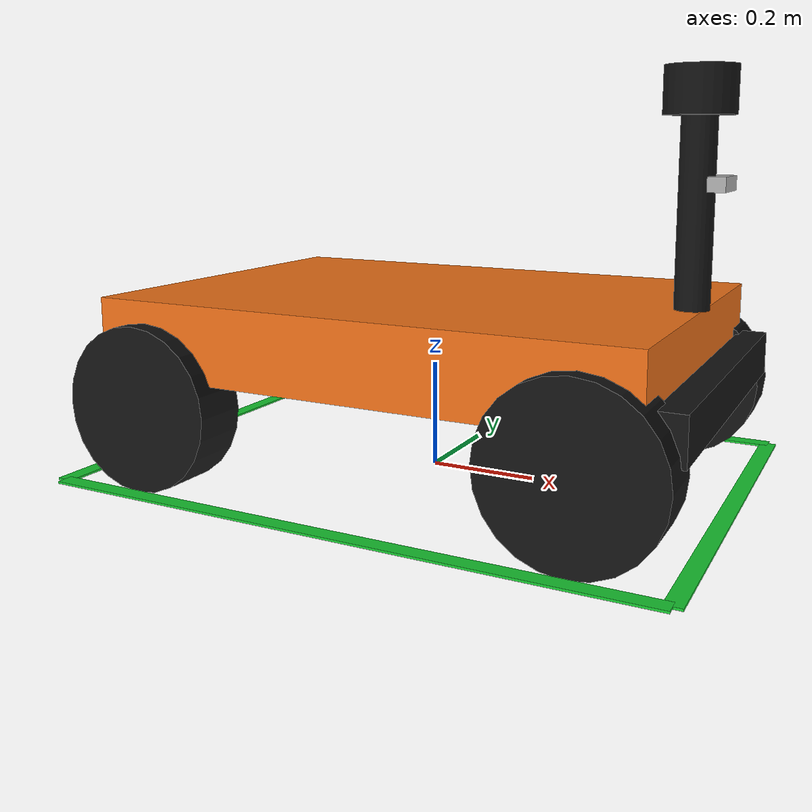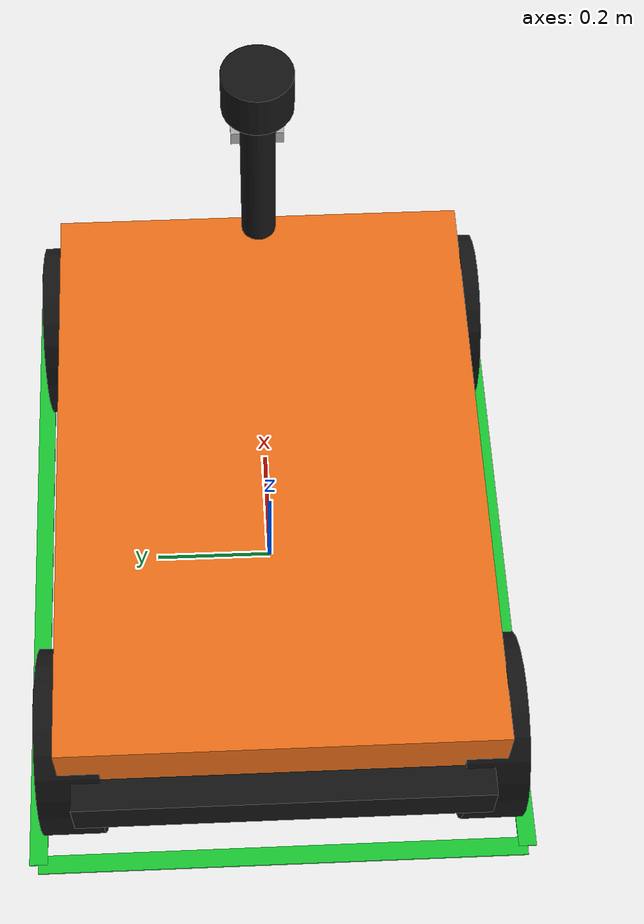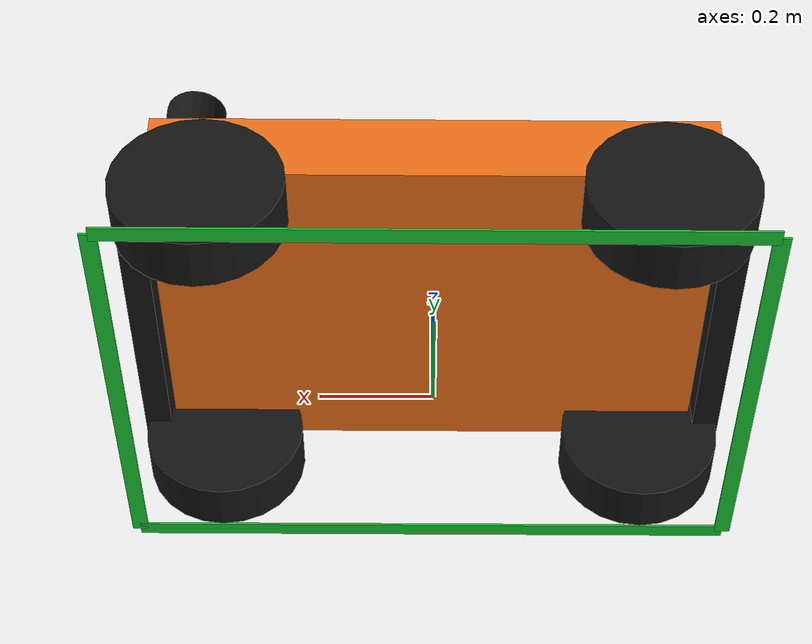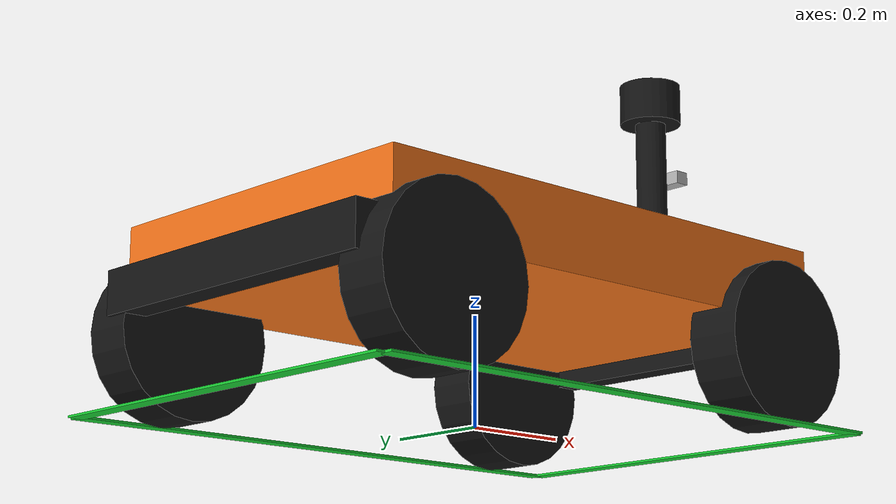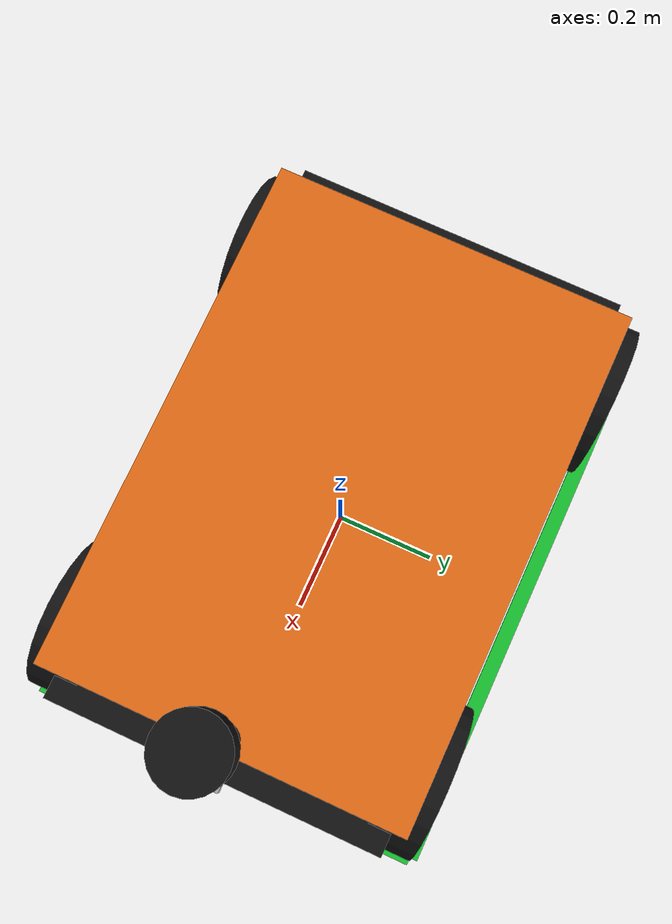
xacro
<?xml version="1.0"?>
<robot name="rover_mega" xmlns:xacro="http://www.ros.org/wiki/xacro">
  <xacro:property name="L" value="1.12"/>          <!-- footprint length, m -->
  <xacro:property name="Wd" value="0.81"/>         <!-- footprint width, m -->
  <xacro:property name="wheel_r" value="0.15"/>
  <xacro:property name="wheel_w" value="0.10"/>
  <xacro:property name="wx" value="0.40"/>         <!-- wheel x offset from centre (measure) -->
  <xacro:property name="wy" value="0.335"/>        <!-- wheel y offset from centre -->
  <xacro:property name="line" value="0.03"/>       <!-- footprint outline line width -->

  <material name="orange"><color rgba="0.95 0.45 0.10 1"/></material>
  <material name="dark"><color rgba="0.08 0.08 0.08 1"/></material>
  <material name="steel"><color rgba="0.7 0.7 0.7 1"/></material>
  <material name="outline"><color rgba="0.1 0.8 0.2 0.9"/></material>

  <link name="base_footprint"/>
  <joint name="footprint_joint" type="fixed"><parent link="base_footprint"/><child link="base_link"/><origin xyz="0 0 ${wheel_r}" rpy="0 0 0"/></joint>

  <link name="base_link">
    <visual><origin xyz="0 0 0.12"/><geometry><box size="1.00 0.70 0.14"/></geometry><material name="orange"/></visual>
    <visual><origin xyz="0.53 0 0.06"/><geometry><box size="0.05 0.66 0.08"/></geometry><material name="dark"/></visual>
    <visual><origin xyz="-0.53 0 0.06"/><geometry><box size="0.05 0.66 0.08"/></geometry><material name="dark"/></visual>
    <collision><origin xyz="0 0 0.10"/><geometry><box size="${L} ${Wd} 0.30"/></geometry></collision>
    <inertial><mass value="60"/><origin xyz="0 0 0.10"/><inertia ixx="3.41" iyy="6.5" izz="9.0" ixy="0" ixz="0" iyz="0"/></inertial>
  </link>

  <xacro:macro name="wheel" params="name x y">
    <link name="${name}_wheel">
      <visual><origin rpy="${pi/2} 0 0"/><geometry><cylinder radius="${wheel_r}" length="${wheel_w}"/></geometry><material name="dark"/></visual>
      <collision><origin rpy="${pi/2} 0 0"/><geometry><cylinder radius="${wheel_r}" length="${wheel_w}"/></geometry></collision>
      <inertial><mass value="3"/><inertia ixx="0.0194" iyy="0.0338" izz="0.0194" ixy="0" ixz="0" iyz="0"/></inertial>
    </link>
    <joint name="${name}_wheel_joint" type="continuous">
      <parent link="base_link"/><child link="${name}_wheel"/><origin xyz="${x} ${y} 0"/><axis xyz="0 1 0"/>
    </joint>
  </xacro:macro>
  <xacro:wheel name="front_left"  x="${wx}"  y="${wy}"/>
  <xacro:wheel name="front_right" x="${wx}"  y="${-wy}"/>
  <xacro:wheel name="rear_left"   x="${-wx}" y="${wy}"/>
  <xacro:wheel name="rear_right"  x="${-wx}" y="${-wy}"/>

  <!-- 3D lidar (SICK multiScan) on the top plate. Position (measure) -->
  <link name="lidar_link">
    <visual><origin xyz="0 0 -0.18"/><geometry><cylinder radius="0.03" length="0.36"/></geometry><material name="dark"/></visual>
    <visual><geometry><cylinder radius="0.06" length="0.08"/></geometry><material name="dark"/></visual>
  </link>
  <joint name="lidar_joint" type="fixed"><parent link="base_link"/><child link="lidar_link"/><origin xyz="0.48 0 0.55"/></joint>

  <!-- Depth camera (RealSense, model to confirm) on the bar under the lidar. Position (measure). camera_link: x forward; optical frame: z forward -->
  <link name="camera_link"><visual><geometry><box size="0.03 0.09 0.025"/></geometry><material name="steel"/></visual></link>
  <joint name="camera_joint" type="fixed"><parent link="base_link"/><child link="camera_link"/><origin xyz="0.52 0 0.40"/></joint>
  <link name="camera_optical_frame"/>
  <joint name="camera_optical_joint" type="fixed"><parent link="camera_link"/><child link="camera_optical_frame"/><origin rpy="${-pi/2} 0 ${-pi/2}"/></joint>

  <!-- IMU (BNO-055) inside the body. Position (measure) -->
  <link name="imu_link"/>
  <joint name="imu_joint" type="fixed"><parent link="base_link"/><child link="imu_link"/><origin xyz="0 0 0.10"/></joint>

  <!-- Footprint outline: four thin green strips on the floor showing the 1.12 x 0.81 m rectangle the planner uses -->
  <link name="footprint_outline">
    <visual><origin xyz="${L/2} 0 0"/><geometry><box size="${line} ${Wd} 0.004"/></geometry><material name="outline"/></visual>
    <visual><origin xyz="${-L/2} 0 0"/><geometry><box size="${line} ${Wd} 0.004"/></geometry><material name="outline"/></visual>
    <visual><origin xyz="0 ${Wd/2} 0"/><geometry><box size="${L} ${line} 0.004"/></geometry><material name="outline"/></visual>
    <visual><origin xyz="0 ${-Wd/2} 0"/><geometry><box size="${L} ${line} 0.004"/></geometry><material name="outline"/></visual>
  </link>
  <joint name="outline_joint" type="fixed"><parent link="base_footprint"/><child link="footprint_outline"/><origin xyz="0 0 0.003"/></joint>
</robot>
